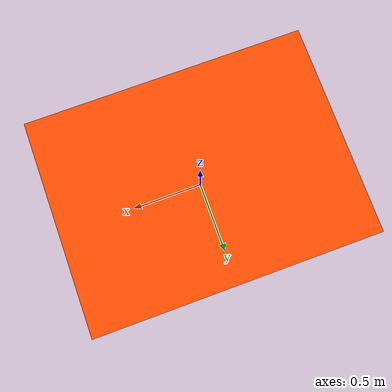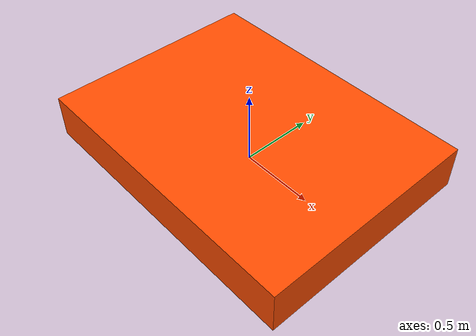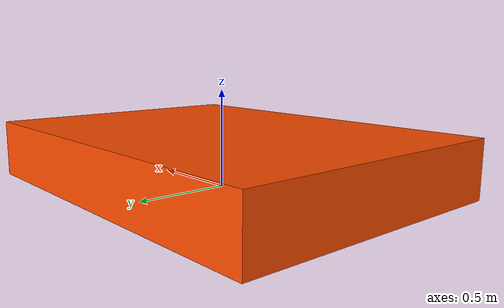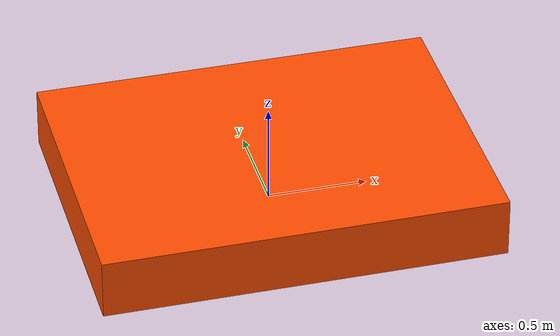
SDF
<?xml version="1.0" ?>
<sdf version="1.8">
  <model name="sar_target_raft">
    <static>false</static>
    <link name="raft_body">
      <pose>0 0 0.15 0 0 0</pose>

      <!-- Raft's a bright orange box -->
      <visual name="visual">
        <geometry>
          <box>
            <size>2.0 1.5 0.3</size>
          </box>
        </geometry>
        <material>
          <ambient>1 0.3 0 1</ambient>
          <diffuse>1 0.3 0 1</diffuse>
          <specular>0.2 0.2 0.2 1</specular>
        </material>
      </visual>

      <collision name="collision">
        <geometry>
          <box>
            <size>2.0 1.5 0.3</size>
          </box>
        </geometry>
      </collision>

      <inertial>
        <mass>50</mass>
        <inertia>
          <ixx>5.0</ixx>
          <iyy>7.0</iyy>
          <izz>10.0</izz>
        </inertia>
      </inertial>
    </link>
  </model>
</sdf>
